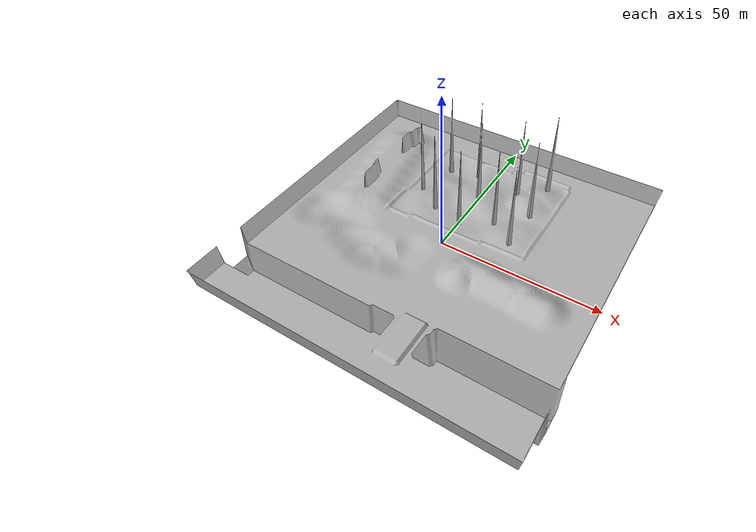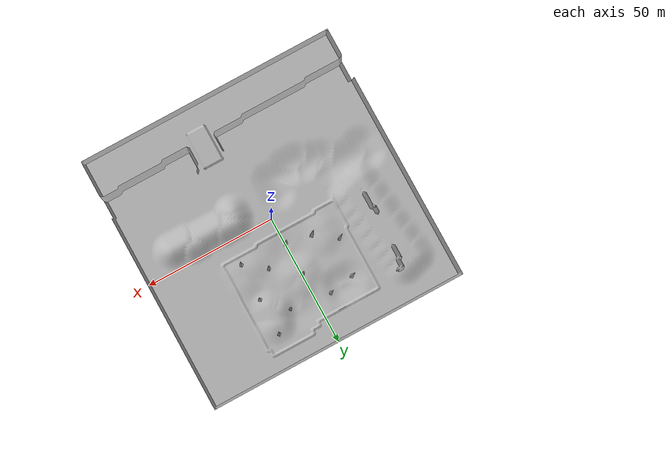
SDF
<?xml version="1.0" ?>
<sdf version="1.5">
  <model name="River_and_forest">
    <pose>0 0 0 0 0 0</pose>
    <static>true</static>
    <link name="body">
      <visual name="visual">
        <geometry>
          <mesh><uri>media/River_and_forest.dae</uri></mesh>
        </geometry>
	<material>
          <script>
            <uri>media/scripts</uri>
            <uri>media/Textures</uri>
            <name>RepeatedGrass/Diffuse</name>
          </script>
        </material>
      </visual>
      <collision name="collision">
        <geometry>
          <mesh><uri>media/River_and_forest.dae</uri></mesh>
        </geometry>
      </collision>
    </link>
  </model>
</sdf>
